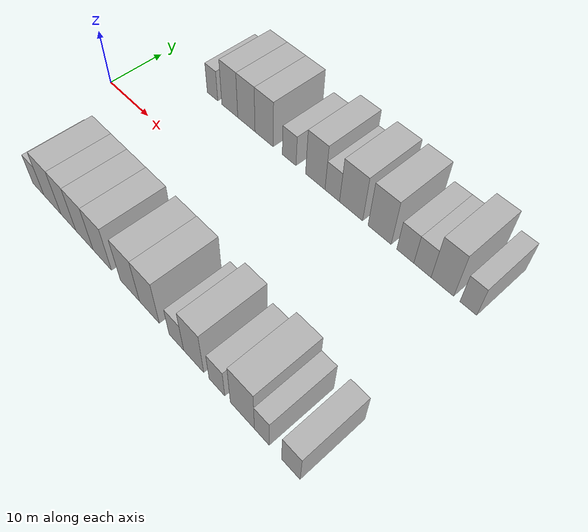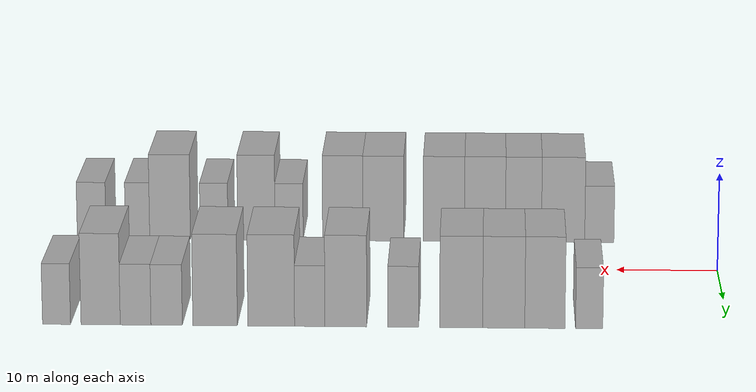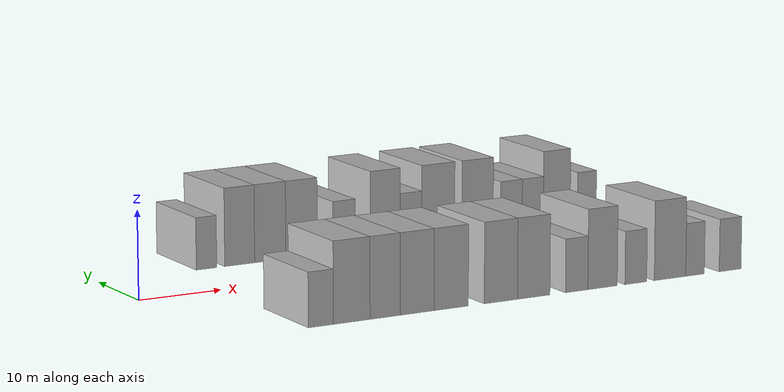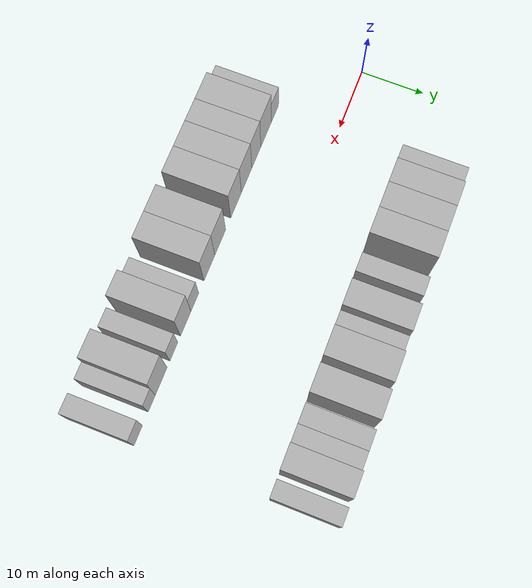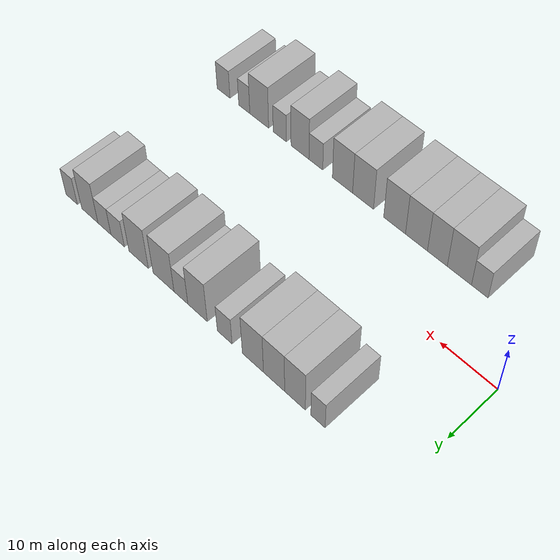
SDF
<sdf version="1.6">
 <world name="default">
  <model name="building_1">
   <static>1</static>
   <pose>13.2862 15.0000 0 0.000000 0.000000 1.570796</pose>
   <link name="link">
    <pose>0 0 3.00 0 0 0</pose>
    <collision name="collision"><geometry><box><size>10.0000 2.5724 6.0000</size></box></geometry></collision>
    <visual name="visual">
     <cast_shadows>0</cast_shadows>
     <geometry><box><size>10.0000 2.5724 6.0000</size></box></geometry>
     <material>
      <script>
       <uri>model://HANNAS_wall/materials/scripts</uri>
       <uri>model://HANNAS_wall/materials/textures</uri>
       <name>vrc/HANNAS_wall</name>
      </script>
     </material>
    </visual>
   </link>
  </model>
  <model name="building_2">
   <static>1</static>
   <pose>17.4752 15.0000 0 0.000000 0.000000 1.570796</pose>
   <link name="link">
    <pose>0 0 4.50 0 0 0</pose>
    <collision name="collision"><geometry><box><size>10.0000 3.8055 9.0000</size></box></geometry></collision>
    <visual name="visual">
     <cast_shadows>0</cast_shadows>
     <geometry><box><size>10.0000 3.8055 9.0000</size></box></geometry>
     <material>
      <script>
       <uri>model://HANNAS_wall/materials/scripts</uri>
       <uri>model://HANNAS_wall/materials/textures</uri>
       <name>vrc/HANNAS_wall</name>
      </script>
     </material>
    </visual>
   </link>
  </model>
  <model name="building_3">
   <static>1</static>
   <pose>21.3710 15.0000 0 0.000000 0.000000 1.570796</pose>
   <link name="link">
    <pose>0 0 4.50 0 0 0</pose>
    <collision name="collision"><geometry><box><size>10.0000 3.9862 9.0000</size></box></geometry></collision>
    <visual name="visual">
     <cast_shadows>0</cast_shadows>
     <geometry><box><size>10.0000 3.9862 9.0000</size></box></geometry>
     <material>
      <script>
       <uri>model://HANNAS_wall/materials/scripts</uri>
       <uri>model://HANNAS_wall/materials/textures</uri>
       <name>vrc/HANNAS_wall</name>
      </script>
     </material>
    </visual>
   </link>
  </model>
  <model name="building_4">
   <static>1</static>
   <pose>25.3962 15.0000 0 0.000000 0.000000 1.570796</pose>
   <link name="link">
    <pose>0 0 4.50 0 0 0</pose>
    <collision name="collision"><geometry><box><size>10.0000 4.0641 9.0000</size></box></geometry></collision>
    <visual name="visual">
     <cast_shadows>0</cast_shadows>
     <geometry><box><size>10.0000 4.0641 9.0000</size></box></geometry>
     <material>
      <script>
       <uri>model://HANNAS_wall/materials/scripts</uri>
       <uri>model://HANNAS_wall/materials/textures</uri>
       <name>vrc/HANNAS_wall</name>
      </script>
     </material>
    </visual>
   </link>
  </model>
  <model name="building_5">
   <static>1</static>
   <pose>30.8911 15.0000 0 0.000000 0.000000 1.570796</pose>
   <link name="link">
    <pose>0 0 3.00 0 0 0</pose>
    <collision name="collision"><geometry><box><size>10.0000 2.9257 6.0000</size></box></geometry></collision>
    <visual name="visual">
     <cast_shadows>0</cast_shadows>
     <geometry><box><size>10.0000 2.9257 6.0000</size></box></geometry>
     <material>
      <script>
       <uri>model://HANNAS_wall/materials/scripts</uri>
       <uri>model://HANNAS_wall/materials/textures</uri>
       <name>vrc/HANNAS_wall</name>
      </script>
     </material>
    </visual>
   </link>
  </model>
  <model name="building_6">
   <static>1</static>
   <pose>36.3340 15.0000 0 0.000000 0.000000 1.570796</pose>
   <link name="link">
    <pose>0 0 4.50 0 0 0</pose>
    <collision name="collision"><geometry><box><size>10.0000 3.9601 9.0000</size></box></geometry></collision>
    <visual name="visual">
     <cast_shadows>0</cast_shadows>
     <geometry><box><size>10.0000 3.9601 9.0000</size></box></geometry>
     <material>
      <script>
       <uri>model://HANNAS_wall/materials/scripts</uri>
       <uri>model://HANNAS_wall/materials/textures</uri>
       <name>vrc/HANNAS_wall</name>
      </script>
     </material>
    </visual>
   </link>
  </model>
  <model name="building_7">
   <static>1</static>
   <pose>39.7516 15.0000 0 0.000000 0.000000 1.570796</pose>
   <link name="link">
    <pose>0 0 3.00 0 0 0</pose>
    <collision name="collision"><geometry><box><size>10.0000 2.8751 6.0000</size></box></geometry></collision>
    <visual name="visual">
     <cast_shadows>0</cast_shadows>
     <geometry><box><size>10.0000 2.8751 6.0000</size></box></geometry>
     <material>
      <script>
       <uri>model://HANNAS_wall/materials/scripts</uri>
       <uri>model://HANNAS_wall/materials/textures</uri>
       <name>vrc/HANNAS_wall</name>
      </script>
     </material>
    </visual>
   </link>
  </model>
  <model name="building_8">
   <static>1</static>
   <pose>43.4057 15.0000 0 0.000000 0.000000 1.570796</pose>
   <link name="link">
    <pose>0 0 4.50 0 0 0</pose>
    <collision name="collision"><geometry><box><size>10.0000 4.4330 9.0000</size></box></geometry></collision>
    <visual name="visual">
     <cast_shadows>0</cast_shadows>
     <geometry><box><size>10.0000 4.4330 9.0000</size></box></geometry>
     <material>
      <script>
       <uri>model://HANNAS_wall/materials/scripts</uri>
       <uri>model://HANNAS_wall/materials/textures</uri>
       <name>vrc/HANNAS_wall</name>
      </script>
     </material>
    </visual>
   </link>
  </model>
  <model name="building_9">
   <static>1</static>
   <pose>48.7348 15.0000 0 0.000000 0.000000 1.570796</pose>
   <link name="link">
    <pose>0 0 4.50 0 0 0</pose>
    <collision name="collision"><geometry><box><size>10.0000 4.2253 9.0000</size></box></geometry></collision>
    <visual name="visual">
     <cast_shadows>0</cast_shadows>
     <geometry><box><size>10.0000 4.2253 9.0000</size></box></geometry>
     <material>
      <script>
       <uri>model://HANNAS_wall/materials/scripts</uri>
       <uri>model://HANNAS_wall/materials/textures</uri>
       <name>vrc/HANNAS_wall</name>
      </script>
     </material>
    </visual>
   </link>
  </model>
  <model name="building_10">
   <static>1</static>
   <pose>53.3366 15.0000 0 0.000000 0.000000 1.570796</pose>
   <link name="link">
    <pose>0 0 3.00 0 0 0</pose>
    <collision name="collision"><geometry><box><size>10.0000 2.9783 6.0000</size></box></geometry></collision>
    <visual name="visual">
     <cast_shadows>0</cast_shadows>
     <geometry><box><size>10.0000 2.9783 6.0000</size></box></geometry>
     <material>
      <script>
       <uri>model://HANNAS_wall/materials/scripts</uri>
       <uri>model://HANNAS_wall/materials/textures</uri>
       <name>vrc/HANNAS_wall</name>
      </script>
     </material>
    </visual>
   </link>
  </model>
  <model name="building_11">
   <static>1</static>
   <pose>56.2876 15.0000 0 0.000000 0.000000 1.570796</pose>
   <link name="link">
    <pose>0 0 3.00 0 0 0</pose>
    <collision name="collision"><geometry><box><size>10.0000 2.9236 6.0000</size></box></geometry></collision>
    <visual name="visual">
     <cast_shadows>0</cast_shadows>
     <geometry><box><size>10.0000 2.9236 6.0000</size></box></geometry>
     <material>
      <script>
       <uri>model://HANNAS_wall/materials/scripts</uri>
       <uri>model://HANNAS_wall/materials/textures</uri>
       <name>vrc/HANNAS_wall</name>
      </script>
     </material>
    </visual>
   </link>
  </model>
  <model name="building_12">
   <static>1</static>
   <pose>59.6168 15.0000 0 0.000000 0.000000 1.570796</pose>
   <link name="link">
    <pose>0 0 4.50 0 0 0</pose>
    <collision name="collision"><geometry><box><size>10.0000 3.7350 9.0000</size></box></geometry></collision>
    <visual name="visual">
     <cast_shadows>0</cast_shadows>
     <geometry><box><size>10.0000 3.7350 9.0000</size></box></geometry>
     <material>
      <script>
       <uri>model://HANNAS_wall/materials/scripts</uri>
       <uri>model://HANNAS_wall/materials/textures</uri>
       <name>vrc/HANNAS_wall</name>
      </script>
     </material>
    </visual>
   </link>
  </model>
  <model name="building_13">
   <static>1</static>
   <pose>63.8142 15.0000 0 0.000000 0.000000 1.570796</pose>
   <link name="link">
    <pose>0 0 3.00 0 0 0</pose>
    <collision name="collision"><geometry><box><size>10.0000 2.6598 6.0000</size></box></geometry></collision>
    <visual name="visual">
     <cast_shadows>0</cast_shadows>
     <geometry><box><size>10.0000 2.6598 6.0000</size></box></geometry>
     <material>
      <script>
       <uri>model://HANNAS_wall/materials/scripts</uri>
       <uri>model://HANNAS_wall/materials/textures</uri>
       <name>vrc/HANNAS_wall</name>
      </script>
     </material>
    </visual>
   </link>
  </model>
  <model name="building_54">
   <static>1</static>
   <pose>11.4987 -15.0000 0 0.000000 0.000000 1.570796</pose>
   <link name="link">
    <pose>0 0 3.00 0 0 0</pose>
    <collision name="collision"><geometry><box><size>10.0000 2.9974 6.0000</size></box></geometry></collision>
    <visual name="visual">
     <cast_shadows>0</cast_shadows>
     <geometry><box><size>10.0000 2.9974 6.0000</size></box></geometry>
     <material>
      <script>
       <uri>model://HANNAS_wall/materials/scripts</uri>
       <uri>model://HANNAS_wall/materials/textures</uri>
       <name>vrc/HANNAS_wall</name>
      </script>
     </material>
    </visual>
   </link>
  </model>
  <model name="building_55">
   <static>1</static>
   <pose>15.2125 -15.0000 0 0.000000 0.000000 1.570796</pose>
   <link name="link">
    <pose>0 0 4.50 0 0 0</pose>
    <collision name="collision"><geometry><box><size>10.0000 4.4302 9.0000</size></box></geometry></collision>
    <visual name="visual">
     <cast_shadows>0</cast_shadows>
     <geometry><box><size>10.0000 4.4302 9.0000</size></box></geometry>
     <material>
      <script>
       <uri>model://HANNAS_wall/materials/scripts</uri>
       <uri>model://HANNAS_wall/materials/textures</uri>
       <name>vrc/HANNAS_wall</name>
      </script>
     </material>
    </visual>
   </link>
  </model>
  <model name="building_56">
   <static>1</static>
   <pose>19.2752 -15.0000 0 0.000000 0.000000 1.570796</pose>
   <link name="link">
    <pose>0 0 4.50 0 0 0</pose>
    <collision name="collision"><geometry><box><size>10.0000 3.6952 9.0000</size></box></geometry></collision>
    <visual name="visual">
     <cast_shadows>0</cast_shadows>
     <geometry><box><size>10.0000 3.6952 9.0000</size></box></geometry>
     <material>
      <script>
       <uri>model://HANNAS_wall/materials/scripts</uri>
       <uri>model://HANNAS_wall/materials/textures</uri>
       <name>vrc/HANNAS_wall</name>
      </script>
     </material>
    </visual>
   </link>
  </model>
  <model name="building_57">
   <static>1</static>
   <pose>23.2187 -15.0000 0 0.000000 0.000000 1.570796</pose>
   <link name="link">
    <pose>0 0 4.50 0 0 0</pose>
    <collision name="collision"><geometry><box><size>10.0000 4.1918 9.0000</size></box></geometry></collision>
    <visual name="visual">
     <cast_shadows>0</cast_shadows>
     <geometry><box><size>10.0000 4.1918 9.0000</size></box></geometry>
     <material>
      <script>
       <uri>model://HANNAS_wall/materials/scripts</uri>
       <uri>model://HANNAS_wall/materials/textures</uri>
       <name>vrc/HANNAS_wall</name>
      </script>
     </material>
    </visual>
   </link>
  </model>
  <model name="building_58">
   <static>1</static>
   <pose>27.4327 -15.0000 0 0.000000 0.000000 1.570796</pose>
   <link name="link">
    <pose>0 0 4.50 0 0 0</pose>
    <collision name="collision"><geometry><box><size>10.0000 4.2362 9.0000</size></box></geometry></collision>
    <visual name="visual">
     <cast_shadows>0</cast_shadows>
     <geometry><box><size>10.0000 4.2362 9.0000</size></box></geometry>
     <material>
      <script>
       <uri>model://HANNAS_wall/materials/scripts</uri>
       <uri>model://HANNAS_wall/materials/textures</uri>
       <name>vrc/HANNAS_wall</name>
      </script>
     </material>
    </visual>
   </link>
  </model>
  <model name="building_59">
   <static>1</static>
   <pose>33.6524 -15.0000 0 0.000000 0.000000 1.570796</pose>
   <link name="link">
    <pose>0 0 4.50 0 0 0</pose>
    <collision name="collision"><geometry><box><size>10.0000 4.2032 9.0000</size></box></geometry></collision>
    <visual name="visual">
     <cast_shadows>0</cast_shadows>
     <geometry><box><size>10.0000 4.2032 9.0000</size></box></geometry>
     <material>
      <script>
       <uri>model://HANNAS_wall/materials/scripts</uri>
       <uri>model://HANNAS_wall/materials/textures</uri>
       <name>vrc/HANNAS_wall</name>
      </script>
     </material>
    </visual>
   </link>
  </model>
  <model name="building_60">
   <static>1</static>
   <pose>37.8197 -15.0000 0 0.000000 0.000000 1.570796</pose>
   <link name="link">
    <pose>0 0 4.50 0 0 0</pose>
    <collision name="collision"><geometry><box><size>10.0000 4.1314 9.0000</size></box></geometry></collision>
    <visual name="visual">
     <cast_shadows>0</cast_shadows>
     <geometry><box><size>10.0000 4.1314 9.0000</size></box></geometry>
     <material>
      <script>
       <uri>model://HANNAS_wall/materials/scripts</uri>
       <uri>model://HANNAS_wall/materials/textures</uri>
       <name>vrc/HANNAS_wall</name>
      </script>
     </material>
    </visual>
   </link>
  </model>
  <model name="building_61">
   <static>1</static>
   <pose>43.3327 -15.0000 0 0.000000 0.000000 1.570796</pose>
   <link name="link">
    <pose>0 0 3.00 0 0 0</pose>
    <collision name="collision"><geometry><box><size>10.0000 2.8946 6.0000</size></box></geometry></collision>
    <visual name="visual">
     <cast_shadows>0</cast_shadows>
     <geometry><box><size>10.0000 2.8946 6.0000</size></box></geometry>
     <material>
      <script>
       <uri>model://HANNAS_wall/materials/scripts</uri>
       <uri>model://HANNAS_wall/materials/textures</uri>
       <name>vrc/HANNAS_wall</name>
      </script>
     </material>
    </visual>
   </link>
  </model>
  <model name="building_62">
   <static>1</static>
   <pose>46.6987 -15.0000 0 0.000000 0.000000 1.570796</pose>
   <link name="link">
    <pose>0 0 4.50 0 0 0</pose>
    <collision name="collision"><geometry><box><size>10.0000 3.8375 9.0000</size></box></geometry></collision>
    <visual name="visual">
     <cast_shadows>0</cast_shadows>
     <geometry><box><size>10.0000 3.8375 9.0000</size></box></geometry>
     <material>
      <script>
       <uri>model://HANNAS_wall/materials/scripts</uri>
       <uri>model://HANNAS_wall/materials/textures</uri>
       <name>vrc/HANNAS_wall</name>
      </script>
     </material>
    </visual>
   </link>
  </model>
  <model name="building_63">
   <static>1</static>
   <pose>51.0510 -15.0000 0 0.000000 0.000000 1.570796</pose>
   <link name="link">
    <pose>0 0 3.00 0 0 0</pose>
    <collision name="collision"><geometry><box><size>10.0000 2.8671 6.0000</size></box></geometry></collision>
    <visual name="visual">
     <cast_shadows>0</cast_shadows>
     <geometry><box><size>10.0000 2.8671 6.0000</size></box></geometry>
     <material>
      <script>
       <uri>model://HANNAS_wall/materials/scripts</uri>
       <uri>model://HANNAS_wall/materials/textures</uri>
       <name>vrc/HANNAS_wall</name>
      </script>
     </material>
    </visual>
   </link>
  </model>
  <model name="building_64">
   <static>1</static>
   <pose>55.5803 -15.0000 0 0.000000 0.000000 1.570796</pose>
   <link name="link">
    <pose>0 0 4.50 0 0 0</pose>
    <collision name="collision"><geometry><box><size>10.0000 4.1915 9.0000</size></box></geometry></collision>
    <visual name="visual">
     <cast_shadows>0</cast_shadows>
     <geometry><box><size>10.0000 4.1915 9.0000</size></box></geometry>
     <material>
      <script>
       <uri>model://HANNAS_wall/materials/scripts</uri>
       <uri>model://HANNAS_wall/materials/textures</uri>
       <name>vrc/HANNAS_wall</name>
      </script>
     </material>
    </visual>
   </link>
  </model>
  <model name="building_65">
   <static>1</static>
   <pose>58.9256 -15.0000 0 0.000000 0.000000 1.570796</pose>
   <link name="link">
    <pose>0 0 3.00 0 0 0</pose>
    <collision name="collision"><geometry><box><size>10.0000 2.4991 6.0000</size></box></geometry></collision>
    <visual name="visual">
     <cast_shadows>0</cast_shadows>
     <geometry><box><size>10.0000 2.4991 6.0000</size></box></geometry>
     <material>
      <script>
       <uri>model://HANNAS_wall/materials/scripts</uri>
       <uri>model://HANNAS_wall/materials/textures</uri>
       <name>vrc/HANNAS_wall</name>
      </script>
     </material>
    </visual>
   </link>
  </model>
  <model name="building_66">
   <static>1</static>
   <pose>63.6565 -15.0000 0 0.000000 0.000000 1.570796</pose>
   <link name="link">
    <pose>0 0 3.00 0 0 0</pose>
    <collision name="collision"><geometry><box><size>10.0000 2.9627 6.0000</size></box></geometry></collision>
    <visual name="visual">
     <cast_shadows>0</cast_shadows>
     <geometry><box><size>10.0000 2.9627 6.0000</size></box></geometry>
     <material>
      <script>
       <uri>model://HANNAS_wall/materials/scripts</uri>
       <uri>model://HANNAS_wall/materials/textures</uri>
       <name>vrc/HANNAS_wall</name>
      </script>
     </material>
    </visual>
   </link>
  </model>
 </world>
</sdf>
